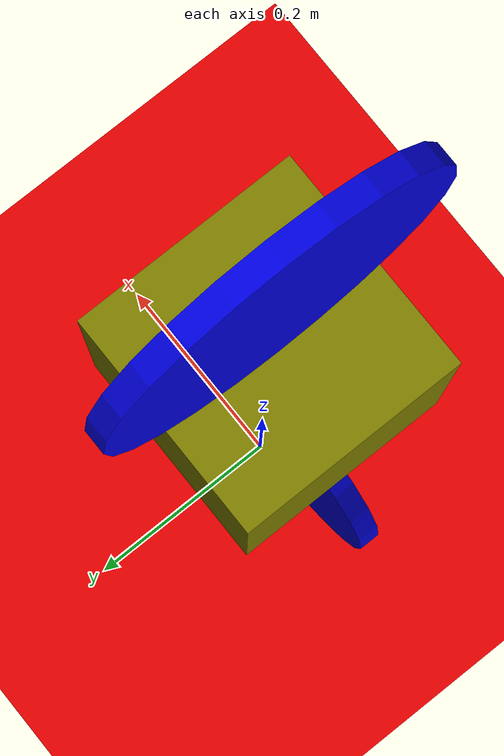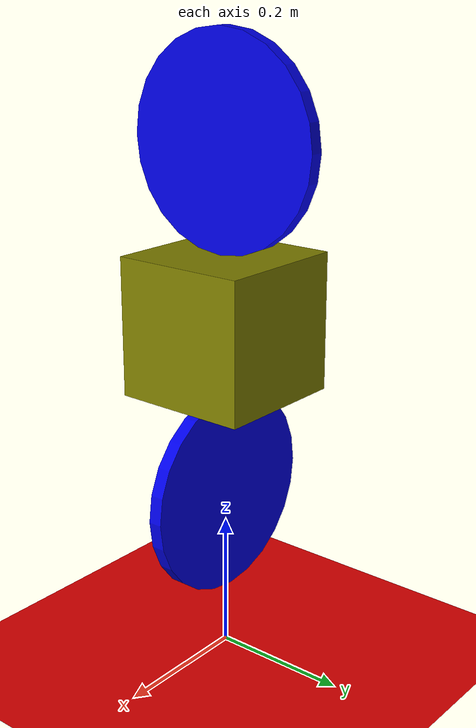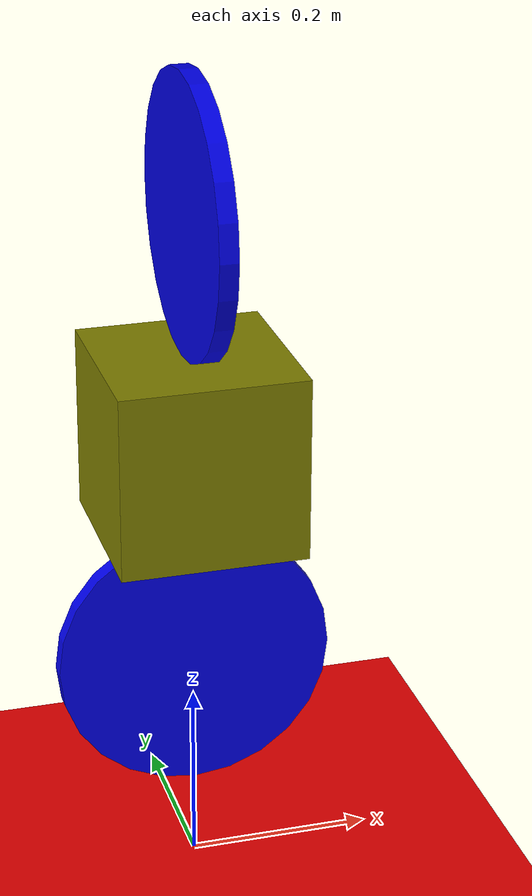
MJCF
<mujoco>

	<option timestep="0.001" integrator="RK4" gravity="0 0 -9.81">
		<flag sensornoise="enable" contact="enable" energy="enable"/>
	</option>
	<asset>
		<material name="floor" texture="checks1" texrepeat="2 2" texuniform="true"/>
		<texture name="checks1" builtin="checker" type='2d' width='256' height='256' rgb1="1 1 1" rgb2="0 0 0" />
		<material name="object" texture="checks2" texrepeat="2 2" texuniform="true"/>
		<texture name="checks2" builtin="checker" type='2d' width='256' height='256' rgb1="1 0 0" rgb2="0 1 0" />
		<texture name='plane' type='2d' builtin='checker' rgb1='0.9 0.9 0.9' rgb2='0.7 0.7 0.7' width='512' height='512'/>
        <material name='plane' reflectance='0.0' texture='plane' texrepeat='1 1' texuniform='true'/>
	</asset>

	<worldbody>
    <light diffuse=".5 .5 .5" pos="0 0 3" dir="0 0 -1"/>
		<geom type="plane" size="100 1 0.1" rgba=".9 0 0 1" material="floor"/>

		<body name="chasis" pos="0 0 0.5" euler="0 0 0">
			<joint type="free" />

			<geom type="box" size="0.1 0.1 0.1" material="object" />
			<inertial mass="2" pos="0 0 0" diaginertia="0.1 0.1 0.1"/>

			<body name="wheel" pos="0 0 -0.25" euler="90 0 0">
				<joint name="pin1" type="hinge" pos="0 0 0.5" axis="0 0 1" />
				<geom type="cylinder" size=".15 .01" rgba="0 0 0.9 1" material="floor"/>
				<inertial mass="1" pos="0 0 0" diaginertia="0.1 0.1 0.1"/>
			</body>

			<body name="pendulum" pos="0 0 0.25" euler="0 90 0">
				<joint name="pin2" type="hinge" pos="0 0 0.0" axis="0 0 1" />
				<geom type="cylinder" size=".15 .01" rgba="0 0 0.9 1" material="floor"/>
				<inertial mass="0.1" pos="0 0 0" diaginertia="0.1 0.1 0.1"/>
			</body>

		</body>

	</worldbody>

	<actuator>
		<motor name="torque1" joint="pin1" gear="1" ctrlrange="-1000 1000" ctrllimited="true"/>
		<motor name="torque2" joint="pin2" gear="1" ctrlrange="-1000 1000" ctrllimited="true"/>
	</actuator>

</mujoco>
